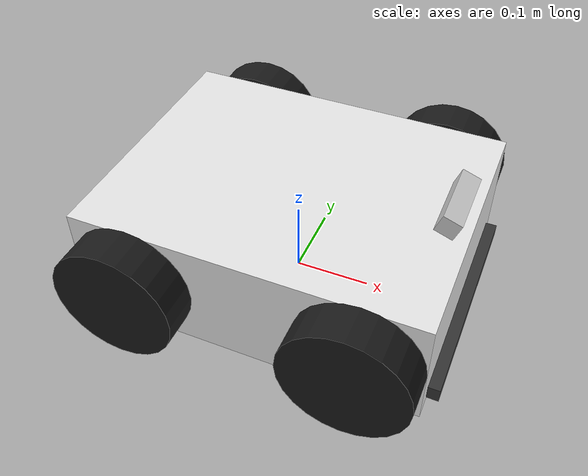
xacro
<?xml version="1.0"?>
<!--
  Robot ③ 回収ロボット (Collector)
  搭載センサ・機器:
    - RealSense D435 RGBD (前方: 残滓確認)
    - 回収コンベア (前部下方)
  役割: 除草状況確認・残滓回収
-->
<robot name="robot3" xmlns:xacro="http://ros.org/wiki/xacro">

  <xacro:include filename="$(find farm_description)/urdf/common/base.urdf.xacro"/>
  <xacro:include filename="$(find farm_description)/urdf/common/rgbd.urdf.xacro"/>

  <!-- 差動駆動台車 (白色) -->
  <xacro:diff_drive_base robot_name="robot3" color="white"/>

  <!-- 前方RGBD: 残滓・除草状況確認 -->
  <xacro:realsense_d435
    prefix="robot3_front"
    parent="robot3/base_link"
    xyz="0.20 0.0 0.10"
    rpy="0.0 0.35 0.0"
    robot="robot3"/>

  <!-- 回収コンベア -->
  <joint name="robot3/conveyor_joint" type="prismatic">
    <parent link="robot3/base_link"/>
    <child  link="robot3/conveyor_link"/>
    <origin xyz="0.18 0.0 -0.06" rpy="0.0 0.0 0.0"/>
    <axis xyz="0 1 0"/>
    <limit lower="-0.05" upper="0.05" effort="10" velocity="0.1"/>
  </joint>

  <link name="robot3/conveyor_link">
    <visual>
      <geometry>
        <box size="0.12 0.30 0.02"/>
      </geometry>
      <material name="dark_grey"/>
    </visual>
    <collision>
      <geometry>
        <box size="0.12 0.30 0.02"/>
      </geometry>
    </collision>
    <inertial>
      <mass value="0.8"/>
      <inertia
        ixx="0.00620" ixy="0.0" ixz="0.0"
        iyy="0.00098" iyz="0.0"
        izz="0.00702"/>
    </inertial>
  </link>

  <!-- 回収コンベアジョイント状態 -->
  <gazebo>
    <plugin filename="gz-sim-joint-state-publisher-system"
            name="gz::sim::systems::JointStatePublisher">
      <topic>/robot3/joint_states</topic>
      <joint_name>robot3/conveyor_joint</joint_name>
    </plugin>
  </gazebo>

</robot>

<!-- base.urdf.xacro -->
<robot xmlns:xacro="http://ros.org/wiki/xacro">

  <!-- ===== 共通パラメータ ===== -->
  <xacro:property name="PI" value="3.14159265358979"/>

  <xacro:property name="base_length" value="0.45"/>
  <xacro:property name="base_width"  value="0.35"/>
  <xacro:property name="base_height" value="0.15"/>

  <xacro:property name="wheel_radius" value="0.08"/>
  <xacro:property name="wheel_width"  value="0.05"/>
  <xacro:property name="track_width"  value="0.40"/>

  <!-- ===== 材質定義 ===== -->
  <material name="grey">
    <color rgba="0.5 0.5 0.5 1.0"/>
  </material>
  <material name="dark_grey">
    <color rgba="0.2 0.2 0.2 1.0"/>
  </material>
  <material name="black">
    <color rgba="0.1 0.1 0.1 1.0"/>
  </material>
  <material name="white">
    <color rgba="0.9 0.9 0.9 1.0"/>
  </material>
  <material name="green">
    <color rgba="0.1 0.6 0.1 1.0"/>
  </material>
  <material name="silver">
    <color rgba="0.8 0.8 0.8 1.0"/>
  </material>

  <!-- ===== ホイールマクロ ===== -->
  <xacro:macro name="wheel_macro" params="prefix side x y">
    <link name="${prefix}/base_link_${side}_wheel">
      <visual>
        <geometry>
          <cylinder radius="${wheel_radius}" length="${wheel_width}"/>
        </geometry>
        <material name="black"/>
      </visual>
      <collision>
        <geometry>
          <cylinder radius="${wheel_radius}" length="${wheel_width}"/>
        </geometry>
        <surface>
          <friction>
            <ode>
              <mu>0.8</mu>
              <mu2>0.8</mu2>
            </ode>
          </friction>
        </surface>
      </collision>
      <inertial>
        <mass value="0.5"/>
        <inertia
          ixx="0.00083" ixy="0.0" ixz="0.0"
          iyy="0.00083" iyz="0.0"
          izz="0.00160"/>
      </inertial>
    </link>

    <joint name="${prefix}/${side}_wheel_joint" type="continuous">
      <parent link="${prefix}/base_link"/>
      <child  link="${prefix}/base_link_${side}_wheel"/>
      <origin xyz="${x} ${y} 0.0" rpy="${PI/2} 0.0 0.0"/>
      <axis xyz="0 0 -1"/>
      <dynamics damping="0.1"/>
    </joint>

    <gazebo reference="${prefix}/base_link_${side}_wheel">
      <mu1>0.8</mu1>
      <mu2>0.8</mu2>
      <material>Gazebo/Black</material>
    </gazebo>
  </xacro:macro>

  <!-- ===== 差動駆動台車マクロ ===== -->
  <xacro:macro name="diff_drive_base" params="robot_name color">

    <!-- base_footprint: 地面接地点 -->
    <link name="${robot_name}/base_footprint"/>

    <joint name="${robot_name}/base_footprint_joint" type="fixed">
      <parent link="${robot_name}/base_footprint"/>
      <child  link="${robot_name}/base_link"/>
      <origin xyz="0.0 0.0 ${wheel_radius}" rpy="0.0 0.0 0.0"/>
    </joint>

    <!-- 車体本体 -->
    <link name="${robot_name}/base_link">
      <visual>
        <geometry>
          <box size="${base_length} ${base_width} ${base_height}"/>
        </geometry>
        <material name="${color}"/>
      </visual>
      <collision>
        <geometry>
          <box size="${base_length} ${base_width} ${base_height}"/>
        </geometry>
      </collision>
      <inertial>
        <mass value="8.0"/>
        <inertia
          ixx="0.0843" ixy="0.0" ixz="0.0"
          iyy="0.1408" iyz="0.0"
          izz="0.2108"/>
      </inertial>
    </link>

    <!-- 4輪配置 -->
    <xacro:wheel_macro prefix="${robot_name}" side="left_front"
      x="${base_length/2 - 0.08}" y="${track_width/2}"/>
    <xacro:wheel_macro prefix="${robot_name}" side="right_front"
      x="${base_length/2 - 0.08}" y="${-track_width/2}"/>
    <xacro:wheel_macro prefix="${robot_name}" side="left_rear"
      x="${-(base_length/2 - 0.08)}" y="${track_width/2}"/>
    <xacro:wheel_macro prefix="${robot_name}" side="right_rear"
      x="${-(base_length/2 - 0.08)}" y="${-track_width/2}"/>

    <!-- 差動駆動プラグイン (Gazebo Harmonic) -->
    <gazebo>
      <plugin filename="gz-sim-diff-drive-system"
              name="gz::sim::systems::DiffDrive">
        <left_joint>${robot_name}/left_front_wheel_joint</left_joint>
        <right_joint>${robot_name}/right_front_wheel_joint</right_joint>
        <wheel_separation>${track_width}</wheel_separation>
        <wheel_radius>${wheel_radius}</wheel_radius>
        <odom_publish_frequency>20</odom_publish_frequency>
        <topic>/${robot_name}/cmd_vel</topic>
        <odom_topic>/${robot_name}/odom</odom_topic>
        <tf_topic>/tf</tf_topic>
        <frame_id>${robot_name}/odom</frame_id>
        <child_frame_id>${robot_name}/base_footprint</child_frame_id>
        <max_linear_acceleration>1.0</max_linear_acceleration>
      </plugin>
    </gazebo>

    <!-- ジョイント状態パブリッシャー -->
    <gazebo>
      <plugin filename="gz-sim-joint-state-publisher-system"
              name="gz::sim::systems::JointStatePublisher">
        <topic>/${robot_name}/joint_states</topic>
        <joint_name>${robot_name}/left_front_wheel_joint</joint_name>
        <joint_name>${robot_name}/right_front_wheel_joint</joint_name>
        <joint_name>${robot_name}/left_rear_wheel_joint</joint_name>
        <joint_name>${robot_name}/right_rear_wheel_joint</joint_name>
      </plugin>
    </gazebo>

  </xacro:macro>

</robot>

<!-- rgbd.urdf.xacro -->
<robot xmlns:xacro="http://ros.org/wiki/xacro">

  <xacro:macro name="realsense_d435" params="prefix parent xyz rpy robot">

    <joint name="${prefix}/rgbd_joint" type="fixed">
      <parent link="${parent}"/>
      <child  link="${prefix}/rgbd_link"/>
      <origin xyz="${xyz}" rpy="${rpy}"/>
    </joint>

    <!-- カメラ筐体 -->
    <link name="${prefix}/rgbd_link">
      <visual>
        <geometry>
          <box size="0.025 0.090 0.025"/>
        </geometry>
        <material name="silver"/>
      </visual>
      <collision>
        <geometry>
          <box size="0.025 0.090 0.025"/>
        </geometry>
      </collision>
      <inertial>
        <mass value="0.072"/>
        <inertia
          ixx="0.0000154" ixy="0.0" ixz="0.0"
          iyy="0.0000036" iyz="0.0"
          izz="0.0000172"/>
      </inertial>
    </link>

    <!-- Optical frame: ROS標準 (Z前・X右・Y下) への変換 -->
    <joint name="${prefix}/rgbd_optical_joint" type="fixed">
      <parent link="${prefix}/rgbd_link"/>
      <child  link="${prefix}/rgbd_optical_frame"/>
      <origin xyz="0 0 0" rpy="${-PI/2} 0 ${-PI/2}"/>
    </joint>
    <link name="${prefix}/rgbd_optical_frame"/>

    <!-- Gazebo Harmonic RGBDセンサ定義 -->
    <gazebo reference="${prefix}/rgbd_link">
      <sensor name="${prefix}_rgbd_sensor" type="rgbd_camera">
        <gz_frame_id>${prefix}/rgbd_optical_frame</gz_frame_id>
        <update_rate>30</update_rate>
        <topic>/${robot}/rgbd/${prefix}</topic>
        <always_on>true</always_on>
        <visualize>false</visualize>
        <camera>
          <horizontal_fov>1.5184</horizontal_fov>
          <image>
            <width>640</width>
            <height>480</height>
            <format>RGB_INT8</format>
          </image>
          <clip>
            <near>0.1</near>
            <far>10.0</far>
          </clip>
          <depth_camera>
            <clip>
              <near>0.1</near>
              <far>10.0</far>
            </clip>
          </depth_camera>
          <noise>
            <type>gaussian</type>
            <mean>0.0</mean>
            <stddev>0.005</stddev>
          </noise>
        </camera>
      </sensor>
    </gazebo>

  </xacro:macro>

</robot>
